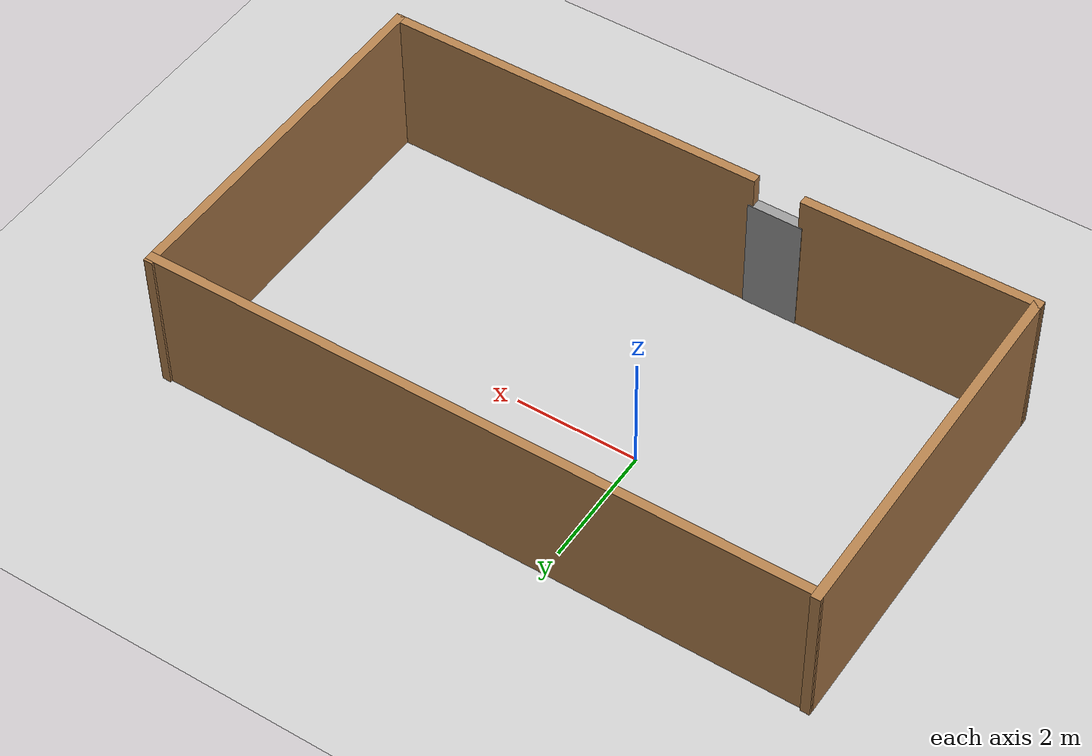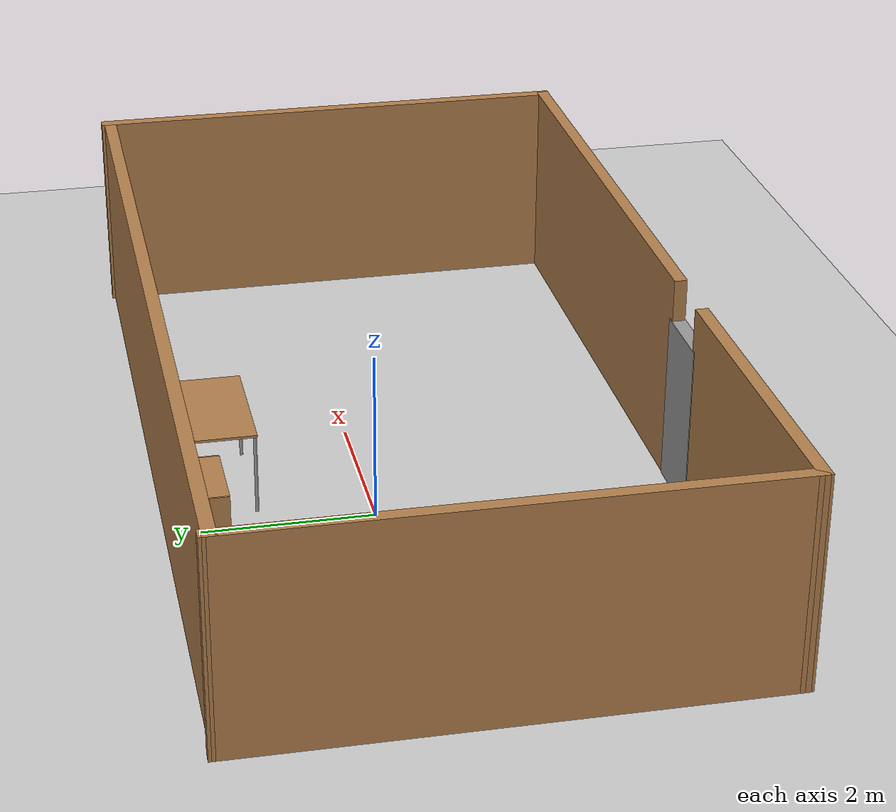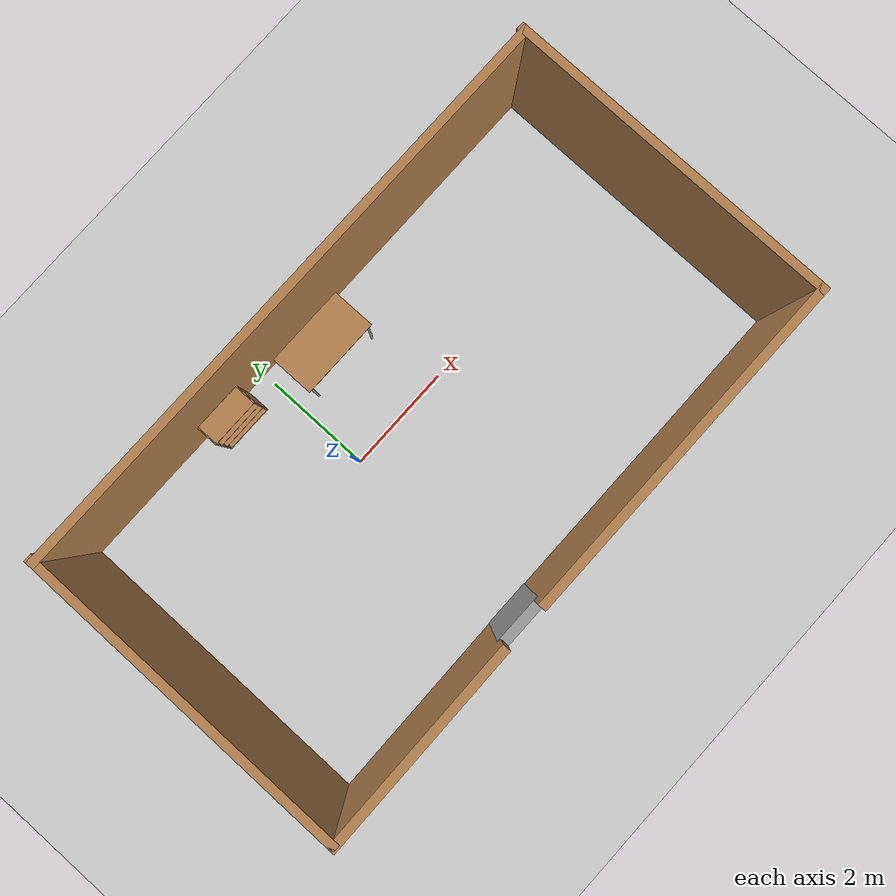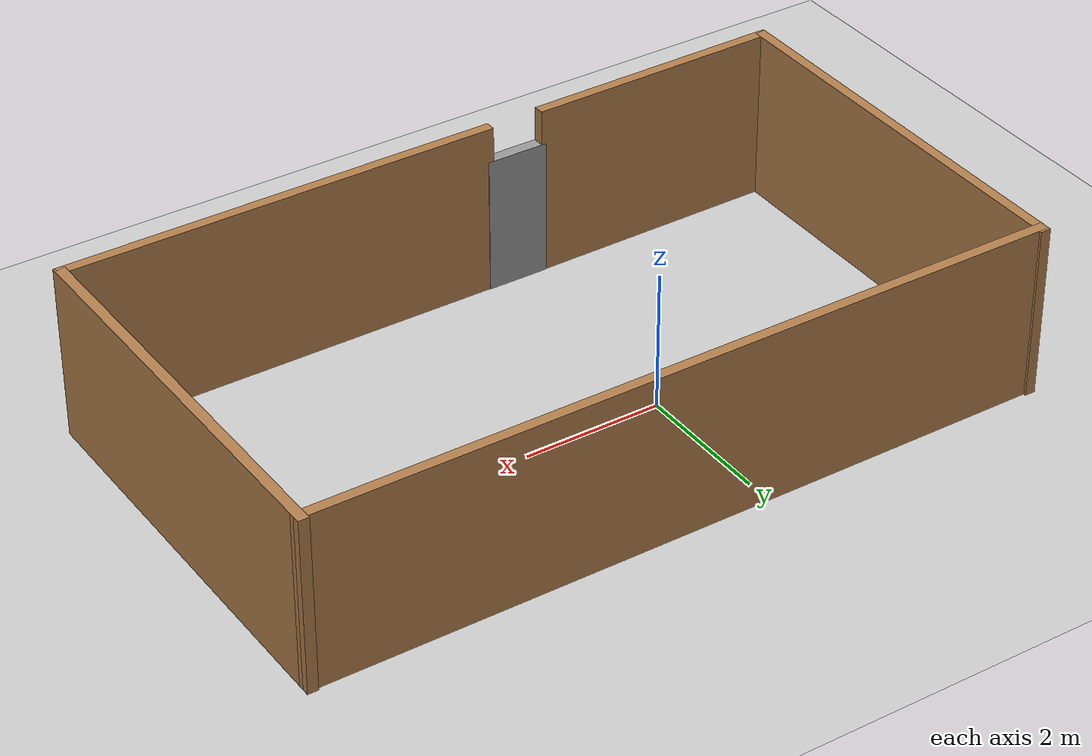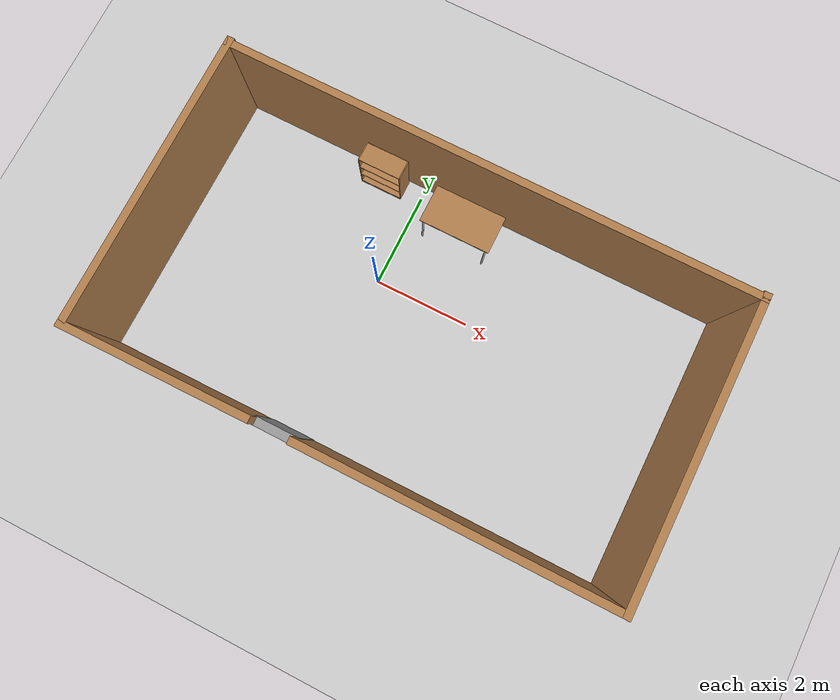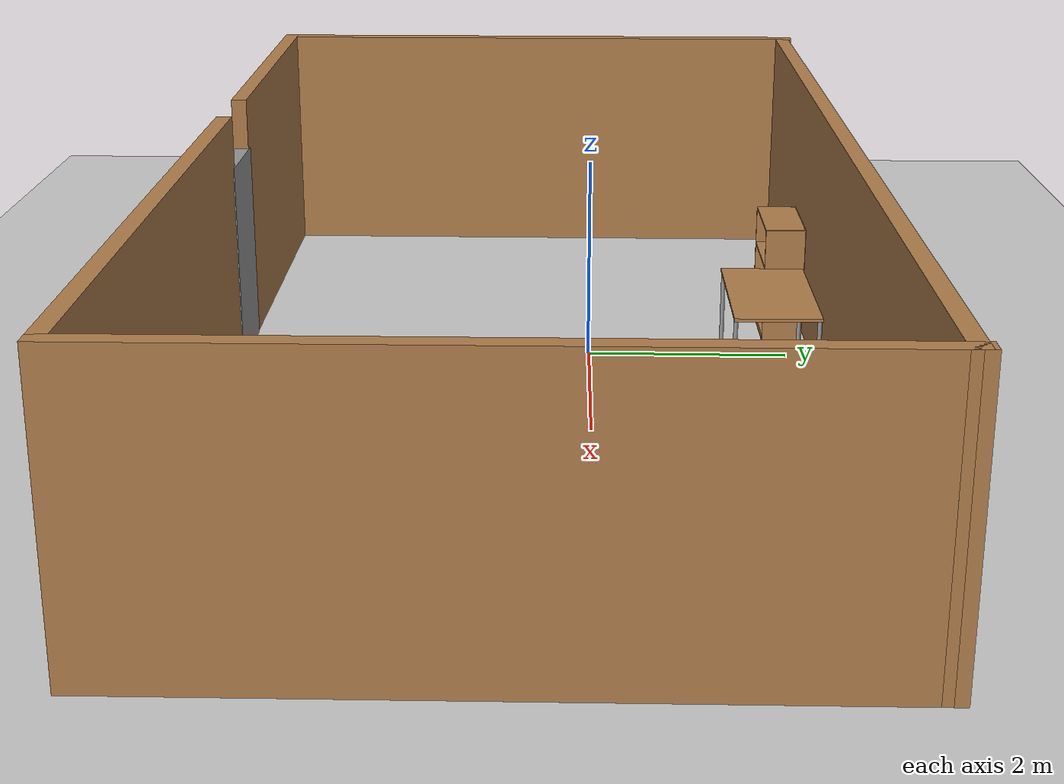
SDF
<sdf version="1.6">
 <world name="default">
  <model name="ground_plane">
   <static>1</static>
   <link name="link">
    <collision name="collision">
     <geometry><plane><normal>0 0 1</normal><size>100 100</size></plane></geometry>
     <surface><friction><ode><mu>100</mu><mu2>50</mu2></ode></friction></surface>
    </collision>
    <visual name="visual">
     <cast_shadows>0</cast_shadows>
     <geometry><plane><normal>0 0 1</normal><size>100 100</size></plane></geometry>
     <material>
      <script><uri>file://media/materials/scripts/gazebo.material</uri><name>Gazebo/Grey</name></script>
     </material>
    </visual>
   </link>
  </model>
  <model name="Untitled">
   <pose>1.14623 -0.610459 0 0 -0 0</pose>
   <link name="Door_0">
    <collision name="Door_0_Collision">
     <geometry><box><size>0.9 0.17 2</size></box></geometry>
     <pose>0 0 1 0 -0 0</pose>
    </collision>
    <visual name="Door_0_Visual">
     <pose>0 0 1 0 -0 0</pose>
     <geometry><box><size>0.9 0.17 2</size></box></geometry>
     <material>
      <script><uri>file://media/materials/scripts/gazebo.material</uri><name>Gazebo/Grey</name></script>
     </material>
    </visual>
    <pose>-1.26623 -2.93954 0 0 -0 0</pose>
   </link>
   <link name="Wall_1">
    <collision name="Wall_1_Collision">
     <geometry><box><size>6.29841 0.15 2.5</size></box></geometry>
     <pose>0 0 1.25 0 -0 0</pose>
    </collision>
    <visual name="Wall_1_Visual">
     <pose>0 0 1.25 0 -0 0</pose>
     <geometry><box><size>6.29841 0.15 2.5</size></box></geometry>
     <material>
      <script><uri>file://media/materials/scripts/gazebo.material</uri><name>Gazebo/Wood</name></script>
      <ambient>1 1 1 1</ambient>
     </material>
     <meta><layer>0</layer></meta>
    </visual>
    <pose>2.24797 -2.93954 0 0 -0 0</pose>
   </link>
   <link name="Wall_2">
    <collision name="Wall_2_Collision">
     <geometry><box><size>6.05968 0.15 2.5</size></box></geometry>
     <pose>0 0 1.25 0 -0 0</pose>
    </collision>
    <visual name="Wall_2_Visual">
     <pose>0 0 1.25 0 -0 0</pose>
     <geometry><box><size>6.05968 0.15 2.5</size></box></geometry>
     <material>
      <script><uri>file://media/materials/scripts/gazebo.material</uri><name>Gazebo/Wood</name></script>
      <ambient>1 1 1 1</ambient>
     </material>
     <meta><layer>0</layer></meta>
    </visual>
    <pose>5.35487 0.0153 0 0 -0 1.57002</pose>
   </link>
   <link name="Wall_3">
    <collision name="Wall_3_Collision">
     <geometry><box><size>10.8288 0.15 2.5</size></box></geometry>
     <pose>0 0 1.25 0 -0 0</pose>
    </collision>
    <visual name="Wall_3_Visual">
     <pose>0 0 1.25 0 -0 0</pose>
     <geometry><box><size>10.8288 0.15 2.5</size></box></geometry>
     <material>
      <script><uri>file://media/materials/scripts/gazebo.material</uri><name>Gazebo/Wood</name></script>
      <ambient>1 1 1 1</ambient>
     </material>
     <meta><layer>0</layer></meta>
    </visual>
    <pose>0.017742 2.93516 0 0 -0 3.14159</pose>
   </link>
   <link name="Wall_4">
    <collision name="Wall_4_Collision">
     <geometry><box><size>6.05979 0.15 2.5</size></box></geometry>
     <pose>0 0 1.25 0 -0 0</pose>
    </collision>
    <visual name="Wall_4_Visual">
     <pose>0 0 1.25 0 -0 0</pose>
     <geometry><box><size>6.05979 0.15 2.5</size></box></geometry>
     <material>
      <script><uri>file://media/materials/scripts/gazebo.material</uri><name>Gazebo/Wood</name></script>
      <ambient>1 1 1 1</ambient>
     </material>
     <meta><layer>0</layer></meta>
    </visual>
    <pose>-5.33916 0.0153 0 0 0 -1.57672</pose>
   </link>
   <link name="Wall_5">
    <collision name="Wall_5_Collision">
     <geometry><box><size>3.78042 0.15 2.5</size></box></geometry>
     <pose>0 0 1.25 0 -0 0</pose>
    </collision>
    <visual name="Wall_5_Visual">
     <pose>0 0 1.25 0 -0 0</pose>
     <geometry><box><size>3.78042 0.15 2.5</size></box></geometry>
     <material>
      <script><uri>file://media/materials/scripts/gazebo.material</uri><name>Gazebo/Wood</name></script>
      <ambient>1 1 1 1</ambient>
     </material>
     <meta><layer>0</layer></meta>
    </visual>
    <pose>-3.54144 -2.95475 0 0 -0 0.008378</pose>
   </link>
   <static>1</static>
  </model>
  <model name="bookshelf">
   <static>1</static>
   <link name="link">
    <inertial><mass>1</mass></inertial>
    <collision name="back">
     <pose>0 0.005 0.6 0 -0 0</pose>
     <geometry><box><size>0.9 0.01 1.2</size></box></geometry>
    </collision>
    <visual name="visual1">
     <pose>0 0.005 0.6 0 -0 0</pose>
     <geometry><box><size>0.9 0.01 1.2</size></box></geometry>
     <material>
      <script><uri>file://media/materials/scripts/gazebo.material</uri><name>Gazebo/Wood</name></script>
     </material>
    </visual>
    <collision name="left_side">
     <pose>0.45 -0.195 0.6 0 -0 0</pose>
     <geometry><box><size>0.02 0.4 1.2</size></box></geometry>
    </collision>
    <visual name="visual2">
     <pose>0.45 -0.195 0.6 0 -0 0</pose>
     <geometry><box><size>0.02 0.4 1.2</size></box></geometry>
     <material>
      <script><uri>file://media/materials/scripts/gazebo.material</uri><name>Gazebo/Wood</name></script>
     </material>
    </visual>
    <collision name="right_side">
     <pose>-0.45 -0.195 0.6 0 -0 0</pose>
     <geometry><box><size>0.02 0.4 1.2</size></box></geometry>
    </collision>
    <visual name="visual3">
     <pose>-0.45 -0.195 0.6 0 -0 0</pose>
     <geometry><box><size>0.02 0.4 1.2</size></box></geometry>
     <material>
      <script><uri>file://media/materials/scripts/gazebo.material</uri><name>Gazebo/Wood</name></script>
     </material>
    </visual>
    <collision name="bottom">
     <pose>0 -0.195 0.03 0 -0 0</pose>
     <geometry><box><size>0.88 0.4 0.06</size></box></geometry>
    </collision>
    <visual name="visual4">
     <pose>0 -0.195 0.03 0 -0 0</pose>
     <geometry><box><size>0.88 0.4 0.06</size></box></geometry>
     <material>
      <script><uri>file://media/materials/scripts/gazebo.material</uri><name>Gazebo/Wood</name></script>
     </material>
    </visual>
    <collision name="top">
     <pose>0 -0.195 1.19 0 -0 0</pose>
     <geometry><box><size>0.88 0.4 0.02</size></box></geometry>
    </collision>
    <visual name="visual5">
     <pose>0 -0.195 1.19 0 -0 0</pose>
     <geometry><box><size>0.88 0.4 0.02</size></box></geometry>
     <material>
      <script><uri>file://media/materials/scripts/gazebo.material</uri><name>Gazebo/Wood</name></script>
     </material>
    </visual>
    <collision name="low_shelf">
     <pose>0 -0.195 0.43 0 -0 0</pose>
     <geometry><box><size>0.88 0.4 0.02</size></box></geometry>
    </collision>
    <visual name="visual6">
     <pose>0 -0.195 0.43 0 -0 0</pose>
     <geometry><box><size>0.88 0.4 0.02</size></box></geometry>
     <material>
      <script><uri>file://media/materials/scripts/gazebo.material</uri><name>Gazebo/Wood</name></script>
     </material>
    </visual>
    <collision name="high_shelf">
     <pose>0 -0.195 0.8 0 -0 0</pose>
     <geometry><box><size>0.88 0.4 0.02</size></box></geometry>
    </collision>
    <visual name="visual7">
     <pose>0 -0.195 0.8 0 -0 0</pose>
     <geometry><box><size>0.88 0.4 0.02</size></box></geometry>
     <material>
      <script><uri>file://media/materials/scripts/gazebo.material</uri><name>Gazebo/Wood</name></script>
     </material>
    </visual>
   </link>
   <pose>-0.8613 2.19443 0 0 -0 0</pose>
  </model>
  <model name="table">
   <static>1</static>
   <link name="link">
    <collision name="surface">
     <pose>0 0 1 0 -0 0</pose>
     <geometry><box><size>1.5 0.8 0.03</size></box></geometry>
     <surface><friction><ode><mu>0.6</mu><mu2>0.6</mu2></ode></friction></surface>
    </collision>
    <visual name="visual1">
     <pose>0 0 1 0 -0 0</pose>
     <geometry><box><size>1.5 0.8 0.03</size></box></geometry>
     <material>
      <script><uri>file://media/materials/scripts/gazebo.material</uri><name>Gazebo/Wood</name></script>
     </material>
    </visual>
    <collision name="front_left_leg">
     <pose>0.68 0.38 0.5 0 -0 0</pose>
     <geometry><cylinder><radius>0.02</radius><length>1</length></cylinder></geometry>
    </collision>
    <visual name="front_left_leg">
     <pose>0.68 0.38 0.5 0 -0 0</pose>
     <geometry><cylinder><radius>0.02</radius><length>1</length></cylinder></geometry>
     <material>
      <script><uri>file://media/materials/scripts/gazebo.material</uri><name>Gazebo/Grey</name></script>
     </material>
    </visual>
    <collision name="front_right_leg">
     <pose>0.68 -0.38 0.5 0 -0 0</pose>
     <geometry><cylinder><radius>0.02</radius><length>1</length></cylinder></geometry>
    </collision>
    <visual name="front_right_leg">
     <pose>0.68 -0.38 0.5 0 -0 0</pose>
     <geometry><cylinder><radius>0.02</radius><length>1</length></cylinder></geometry>
     <material>
      <script><uri>file://media/materials/scripts/gazebo.material</uri><name>Gazebo/Grey</name></script>
     </material>
    </visual>
    <collision name="back_right_leg">
     <pose>-0.68 -0.38 0.5 0 -0 0</pose>
     <geometry><cylinder><radius>0.02</radius><length>1</length></cylinder></geometry>
    </collision>
    <visual name="back_right_leg">
     <pose>-0.68 -0.38 0.5 0 -0 0</pose>
     <geometry><cylinder><radius>0.02</radius><length>1</length></cylinder></geometry>
     <material>
      <script><uri>file://media/materials/scripts/gazebo.material</uri><name>Gazebo/Grey</name></script>
     </material>
    </visual>
    <collision name="back_left_leg">
     <pose>-0.68 0.38 0.5 0 -0 0</pose>
     <geometry><cylinder><radius>0.02</radius><length>1</length></cylinder></geometry>
    </collision>
    <visual name="back_left_leg">
     <pose>-0.68 0.38 0.5 0 -0 0</pose>
     <geometry><cylinder><radius>0.02</radius><length>1</length></cylinder></geometry>
     <material>
      <script><uri>file://media/materials/scripts/gazebo.material</uri><name>Gazebo/Grey</name></script>
     </material>
    </visual>
   </link>
   <pose>1.04778 1.68781 0 0 -0 0</pose>
  </model>
 </world>
</sdf>
